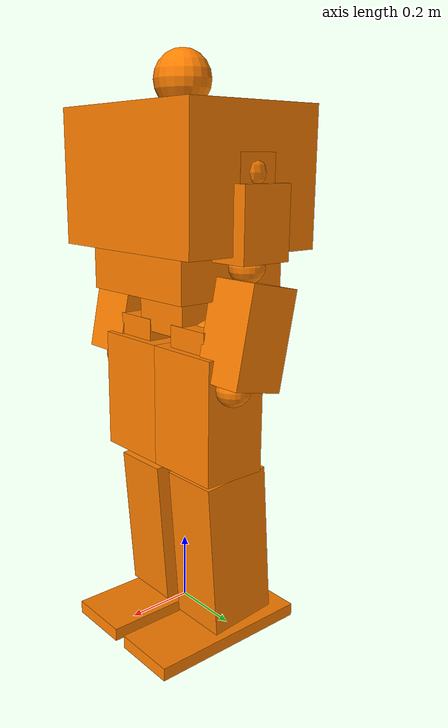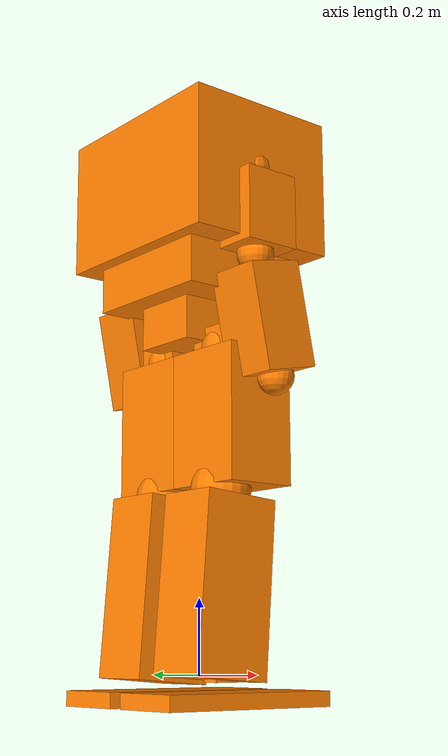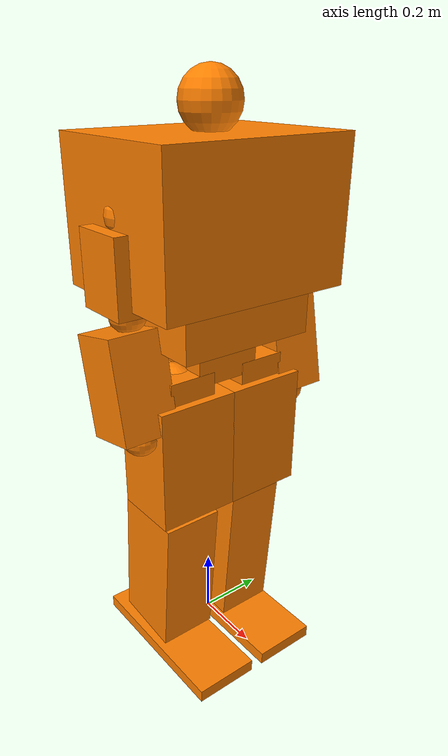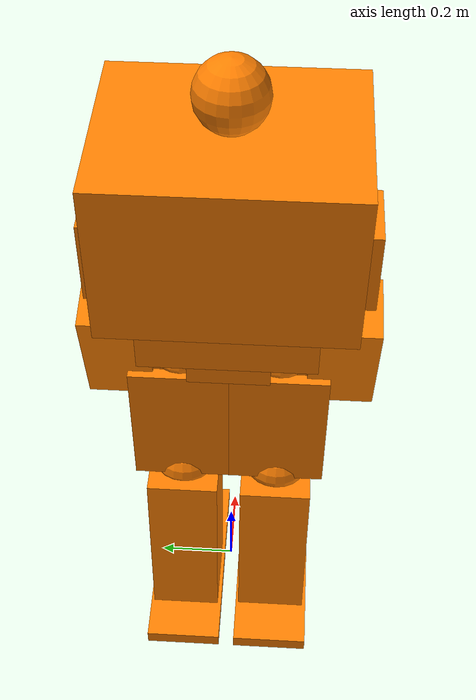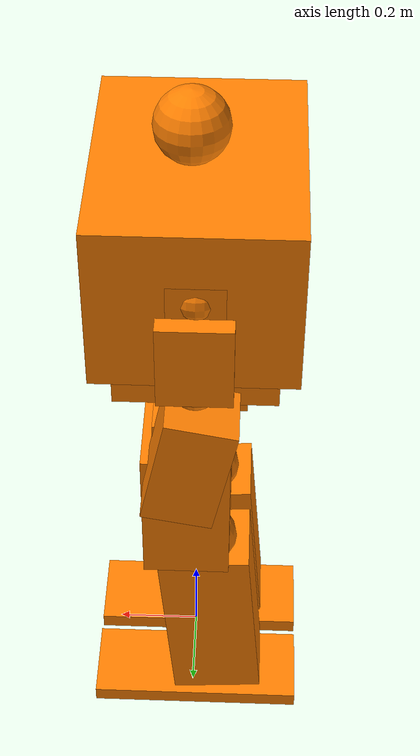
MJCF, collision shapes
<?xml version="1.0" encoding="utf-8"?>
<mujoco model="t800_gmr">
  <compiler angle="radian" autolimits="true" meshdir="../meshes" />
  <option gravity="0 0 -9.81" timestep="0.005" />
  <default>
    <joint damping="1.0" armature="0.01" limited="true" />
    <geom type="capsule" size="0.03" rgba="0.78 0.78 0.82 1" />
    <default class="visual_mesh">
      <geom type="mesh" contype="0" conaffinity="0" density="0" group="2" rgba="0.82 0.82 0.86 1" />
    </default>
    <default class="collision_proxy">
      <geom group="3" rgba="1 0.5 0 0" contype="1" conaffinity="1" />
    </default>
  </default>
  <asset>
    <mesh name="LINK_BASE" file="LINK_BASE.stl" />
    <mesh name="LINK_HIP_PITCH_L" file="LINK_HIP_PITCH_L.stl" />
    <mesh name="LINK_HIP_ROLL_L" file="LINK_HIP_ROLL_L.stl" />
    <mesh name="LINK_HIP_YAW_L" file="LINK_HIP_YAW_L.stl" />
    <mesh name="LINK_KNEE_PITCH_L" file="LINK_KNEE_PITCH_L.stl" />
    <mesh name="LINK_ANKLE_PITCH_L" file="LINK_ANKLE_PITCH_L.stl" />
    <mesh name="LINK_ANKLE_ROLL_L" file="LINK_ANKLE_ROLL_L.stl" />
    <mesh name="LINK_HIP_PITCH_R" file="LINK_HIP_PITCH_R.stl" />
    <mesh name="LINK_HIP_ROLL_R" file="LINK_HIP_ROLL_R.stl" />
    <mesh name="LINK_HIP_YAW_R" file="LINK_HIP_YAW_R.stl" />
    <mesh name="LINK_KNEE_PITCH_R" file="LINK_KNEE_PITCH_R.stl" />
    <mesh name="LINK_ANKLE_PITCH_R" file="LINK_ANKLE_PITCH_R.stl" />
    <mesh name="LINK_ANKLE_ROLL_R" file="LINK_ANKLE_ROLL_R.stl" />
    <mesh name="LINK_TORSO_YAW" file="LINK_TORSO_YAW.stl" />
    <mesh name="LINK_SHOULDER_PITCH_L" file="LINK_SHOULDER_PITCH_L.stl" />
    <mesh name="LINK_SHOULDER_ROLL_L" file="LINK_SHOULDER_ROLL_L.stl" />
    <mesh name="LINK_SHOULDER_YAW_L" file="LINK_SHOULDER_YAW_L.stl" />
    <mesh name="LINK_ELBOW_PITCH_L" file="LINK_ELBOW_PITCH_L.stl" />
    <mesh name="LINK_ELBOW_YAW_L" file="LINK_ELBOW_YAW_L.stl" />
    <mesh name="LINK_SHOULDER_PITCH_R" file="LINK_SHOULDER_PITCH_R.stl" />
    <mesh name="LINK_SHOULDER_ROLL_R" file="LINK_SHOULDER_ROLL_R.stl" />
    <mesh name="LINK_SHOULDER_YAW_R" file="LINK_SHOULDER_YAW_R.stl" />
    <mesh name="LINK_ELBOW_PITCH_R" file="LINK_ELBOW_PITCH_R.stl" />
    <mesh name="LINK_ELBOW_YAW_R" file="LINK_ELBOW_YAW_R.stl" />
    <mesh name="LINK_HEAD_PITCH" file="LINK_HEAD_PITCH.stl" />
    <mesh name="LINK_HEAD_YAW" file="LINK_HEAD_YAW.stl" />
  </asset>
  <worldbody>
    <body name="LINK_BASE" pos="0 0 0.95">
      <freejoint name="root" />
      <geom class="visual_mesh" mesh="LINK_BASE" />
      <geom pos="-0.01664 0 0.020479" size="0.103608 0.096793 0.098939" class="collision_proxy" type="box" />
      <geom pos="-0.01 0 0.01" size="0.09" class="collision_proxy" type="sphere" />
      <body name="LINK_HIP_PITCH_L" pos="0.0 0.079178 0.0">
        <joint name="J00_HIP_PITCH_L" type="hinge" axis="0.0 0.96593 -0.25882" range="-3.316 2.269" />
        <geom class="visual_mesh" mesh="LINK_HIP_PITCH_L" />
        <geom pos="0.0 0.04 -0.10" size="0.07" class="collision_proxy" type="sphere" />
        <body name="LINK_HIP_ROLL_L" pos="0.004662 0.040322 -0.10752">
          <joint name="J01_HIP_ROLL_L" type="hinge" axis="1 0 0" range="-1.082 2.059" />
          <geom class="visual_mesh" mesh="LINK_HIP_ROLL_L" />
          <geom pos="0.012007 -0.000001 -0.008161" size="0.073102 0.070734 0.071838" class="collision_proxy" type="box" />
          <body name="LINK_HIP_YAW_L" pos="0.0094616 0 -0.080512">
            <joint name="J02_HIP_YAW_L" type="hinge" axis="0 0 1" range="-1.42244667 3.6022778" />
            <geom class="visual_mesh" mesh="LINK_HIP_YAW_L" />
            <geom pos="0.0 0.002 -0.10" size="0.10 0.12 0.18" class="collision_proxy" type="box" />
            <body name="LINK_KNEE_PITCH_L" pos="-0.037707 0 -0.28792">
              <joint name="J03_KNEE_PITCH_L" type="hinge" axis="0 1 0" range="0 2.355" />
              <geom class="visual_mesh" mesh="LINK_KNEE_PITCH_L" />
              <geom pos="0 0 0" size="0.08" class="collision_proxy" type="sphere" />
              <geom pos="-0.02 0 -0.25" size="0.11 0.09 0.24" class="collision_proxy" type="box" euler="0 0.08 0" />
              <body name="LINK_ANKLE_PITCH_L" pos="-0.0027168 0 -0.43867">
                <joint name="J04_ANKLE_PITCH_L" type="hinge" axis="0 1 0" range="-0.68068 0.68068" />
                <geom class="visual_mesh" mesh="LINK_ANKLE_PITCH_L" />
                <geom pos="0.000082 0 -0.01255" size="0.035636 0.0235 0.036419" class="collision_proxy" type="box" />
                <body name="LINK_ANKLE_ROLL_L" pos="0.0011073 0 -0.037928">
                  <joint name="J05_ANKLE_ROLL_L" type="hinge" axis="1 0 0" range="-0.3491 0.1745" />
                  <geom class="visual_mesh" mesh="LINK_ANKLE_ROLL_L" />
                  <geom pos="0.02 0.00166 -0.054" size="0.26 0.10 0.02" class="collision_proxy" type="box" />
                  <body name="LINK_FOOT_L" pos="0 0 -0.06453"></body>
                </body>
              </body>
            </body>
          </body>
        </body>
      </body>
      <body name="LINK_HIP_PITCH_R" pos="0.0 -0.079178 0.0">
        <joint name="J06_HIP_PITCH_R" type="hinge" axis="0.0 0.96593 0.25882" range="-3.316 2.269" />
        <geom class="visual_mesh" mesh="LINK_HIP_PITCH_R" />
        <geom pos="0.0 -0.04 -0.10" size="0.07" class="collision_proxy" type="sphere" />
        <body name="LINK_HIP_ROLL_R" pos="0.004662 -0.040322 -0.10752">
          <joint name="J07_HIP_ROLL_R" type="hinge" axis="1 0 0" range="-2.059 1.082" />
          <geom class="visual_mesh" mesh="LINK_HIP_ROLL_R" />
          <geom pos="0.012007 0.000001 -0.008161" size="0.073102 0.070734 0.071838" class="collision_proxy" type="box" />
          <body name="LINK_HIP_YAW_R" pos="0.0094616 0 -0.080512">
            <joint name="J08_HIP_YAW_R" type="hinge" axis="0 0 1" range="-3.6022778 1.42244667" />
            <geom class="visual_mesh" mesh="LINK_HIP_YAW_R" />
            <geom pos="0.0 0.002 -0.10" size="0.10 0.12 0.18" class="collision_proxy" type="box" />
            <body name="LINK_KNEE_PITCH_R" pos="-0.037707 0 -0.28792">
              <joint name="J09_KNEE_PITCH_R" type="hinge" axis="0 1 0" range="0 2.355" />
              <geom class="visual_mesh" mesh="LINK_KNEE_PITCH_R" />
              <geom pos="0 0 0" size="0.08" class="collision_proxy" type="sphere" />
              <geom pos="-0.02 0 -0.25" size="0.11 0.09 0.23" class="collision_proxy" type="box" euler="0 0.08 0" />
              <body name="LINK_ANKLE_PITCH_R" pos="-0.0027168 0 -0.43867">
                <joint name="J10_ANKLE_PITCH_R" type="hinge" axis="0 1 0" range="-0.68068 0.68068" />
                <geom class="visual_mesh" mesh="LINK_ANKLE_PITCH_R" />
                <geom pos="0.000082 0 -0.01255" size="0.035636 0.0235 0.036419" class="collision_proxy" type="box" />
                <body name="LINK_ANKLE_ROLL_R" pos="0.0011073 0 -0.037928">
                  <joint name="J11_ANKLE_ROLL_R" type="hinge" axis="1 0 0" range="-0.1745 0.3491" />
                  <geom class="visual_mesh" mesh="LINK_ANKLE_ROLL_R" />
                  <geom pos="0.02 -0.00166 -0.054" size="0.26 0.10 0.02" class="collision_proxy" type="box" />
                  <body name="LINK_FOOT_R" pos="0 0 -0.06453"></body>
                </body>
              </body>
            </body>
          </body>
        </body>
      </body>
      <body name="LINK_TORSO_YAW" pos="0 0 0.10384">
        <joint name="J12_TORSO_YAW" type="hinge" axis="0 0 1" range="-4.381 1.2392" />
        <geom class="visual_mesh" mesh="LINK_TORSO_YAW" />
        <geom pos="-0.007 -0.001 0.075" size="0.18 0.20 0.14" class="collision_proxy" type="box" />
        <geom pos="-0.007 -0.001 0.25" size="0.22 0.28 0.19" class="collision_proxy" type="box" />
        <body name="LINK_SHOULDER_PITCH_L" pos="-0.011 0.16303 0.27889">
          <joint name="J13_SHOULDER_PITCH_L" type="hinge" axis="0.0 0.99678 0.080199" range="-2.967 2.793" />
          <geom class="visual_mesh" mesh="LINK_SHOULDER_PITCH_L" />
          <geom pos="0 0.065 -0.012" size="0.06" class="collision_proxy" type="sphere" />
          <body name="LINK_SHOULDER_ROLL_L" pos="0 0.062533 -0.015455">
            <joint name="J14_SHOULDER_ROLL_L" type="hinge" axis="1 0 0" range="-0.384 2.443" />
            <geom class="visual_mesh" mesh="LINK_SHOULDER_ROLL_L" />
            <geom pos="0.0 0.000886 -0.016108" size="0.060949 0.052878 0.069315" class="collision_proxy" type="box" />
            <body name="LINK_SHOULDER_YAW_L" pos="0.000034602 0.0085246 -0.082712">
              <joint name="J15_SHOULDER_YAW_L" type="hinge" axis="0.0 -0.071497 0.99744" range="-2.618 2.618" />
              <geom class="visual_mesh" mesh="LINK_SHOULDER_YAW_L" />
              <geom pos="0.001 0.005 -0.04" size="0.08 0.08 0.10" class="collision_proxy" type="box" />
              <body name="LINK_ELBOW_PITCH_L" pos="0.0019252 0.013597 -0.15075">
                <joint name="J16_ELBOW_PITCH_L" type="hinge" axis="0.0 0.99744 0.071497" range="-2.286 0.262" />
                <geom class="visual_mesh" mesh="LINK_ELBOW_PITCH_L" />
                <geom pos="0 0 0" size="0.05" class="collision_proxy" type="sphere" />
                <body name="LINK_ELBOW_YAW_L" pos="-0.0022091 0.0094362 -0.13182">
                  <joint name="J17_ELBOW_YAW_L" type="hinge" axis="-0.21644 -0.069803 0.9738" range="-2.618 2.618" />
                  <geom class="visual_mesh" mesh="LINK_ELBOW_YAW_L" />
                  <geom pos="0.014 0.005 -0.05" size="0.08 0.08 0.14" class="collision_proxy" type="box" euler="0 -0.2 0" />
                  <body name="LINK_WRIST_END_L" pos="0.029436 0.0124855 -0.13222151">
                    <geom pos="0.026 -0.009 -0.06" size="0.05" class="collision_proxy" type="sphere" />
                  </body>
                </body>
              </body>
            </body>
          </body>
        </body>
        <body name="LINK_SHOULDER_PITCH_R" pos="-0.011 -0.16303 0.27889">
          <joint name="J20_SHOULDER_PITCH_R" type="hinge" axis="0.0 0.99678 -0.080199" range="-2.967 2.793" />
          <geom class="visual_mesh" mesh="LINK_SHOULDER_PITCH_R" />
          <geom pos="0 -0.065 -0.012" size="0.06" class="collision_proxy" type="sphere" />
          <body name="LINK_SHOULDER_ROLL_R" pos="0 -0.062533 -0.015455">
            <joint name="J21_SHOULDER_ROLL_R" type="hinge" axis="1 0 0" range="-2.443 0.384" />
            <geom class="visual_mesh" mesh="LINK_SHOULDER_ROLL_R" />
            <geom pos="0.0 -0.000886 -0.016108" size="0.060949 0.052878 0.069315" class="collision_proxy" type="box" />
            <body name="LINK_SHOULDER_YAW_R" pos="0.000034602 -0.0085246 -0.082712">
              <joint name="J22_SHOULDER_YAW_R" type="hinge" axis="0.0 0.071497 0.99744" range="-2.618 2.618" />
              <geom class="visual_mesh" mesh="LINK_SHOULDER_YAW_R" />
              <geom pos="0.001 -0.005 -0.04" size="0.08 0.08 0.10" class="collision_proxy" type="box" />
              <body name="LINK_ELBOW_PITCH_R" pos="0.0019252 -0.013597 -0.15075">
                <joint name="J23_ELBOW_PITCH_R" type="hinge" axis="0.0 0.99744 -0.071497" range="-2.286 0.262" />
                <geom class="visual_mesh" mesh="LINK_ELBOW_PITCH_R" />
                <geom pos="0 0 0" size="0.05" class="collision_proxy" type="sphere" />
                <body name="LINK_ELBOW_YAW_R" pos="-0.0022091 -0.0094362 -0.13182">
                  <joint name="J24_ELBOW_YAW_R" type="hinge" axis="-0.21644 0.069803 0.9738" range="-2.618 2.618" />
                  <geom class="visual_mesh" mesh="LINK_ELBOW_YAW_R" />
                  <geom pos="0.014 -0.005 -0.05" size="0.08 0.08 0.14" class="collision_proxy" type="box" euler="0 -0.2 0" />
                  <body name="LINK_WRIST_END_R" pos="0.029436 -0.0124855 -0.13222151">
                    <geom pos="0.026 0.009 -0.06" size="0.05" class="collision_proxy" type="sphere" />
                  </body>
                </body>
              </body>
            </body>
          </body>
        </body>
        <body name="LINK_HEAD_PITCH" pos="-0.0113 0 0.38604">
          <joint name="J27_HEAD_PITCH" type="hinge" axis="0 1 0" range="-0.523 0.523" />
          <geom class="visual_mesh" mesh="LINK_HEAD_PITCH" />
          <geom pos="-0.000051 0.001 -0.000013" size="0.019699 0.0325 0.019737" class="collision_proxy" type="box" />
          <body name="LINK_HEAD_YAW" pos="0 0 0.040199">
            <joint name="J28_HEAD_YAW" type="hinge" axis="0 0 1" range="-1.222 1.222" />
            <geom class="visual_mesh" mesh="LINK_HEAD_YAW" />
            <geom pos="0.018 0 0.08" size="0.08" class="collision_proxy" type="sphere" />
          </body>
        </body>
      </body>
    </body>
  </worldbody>
</mujoco>
